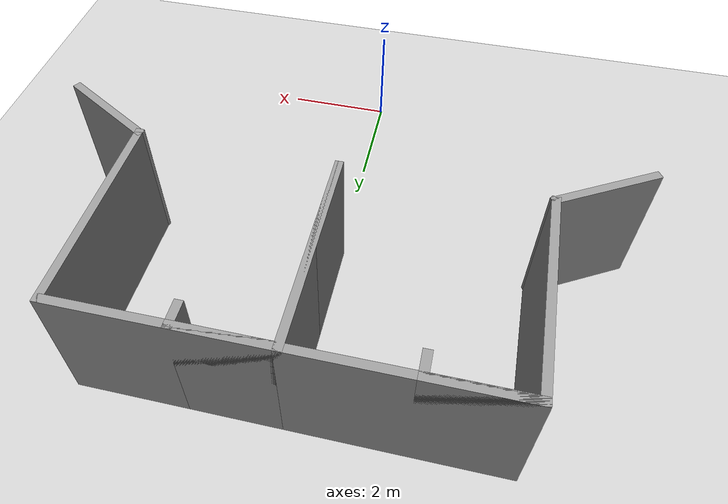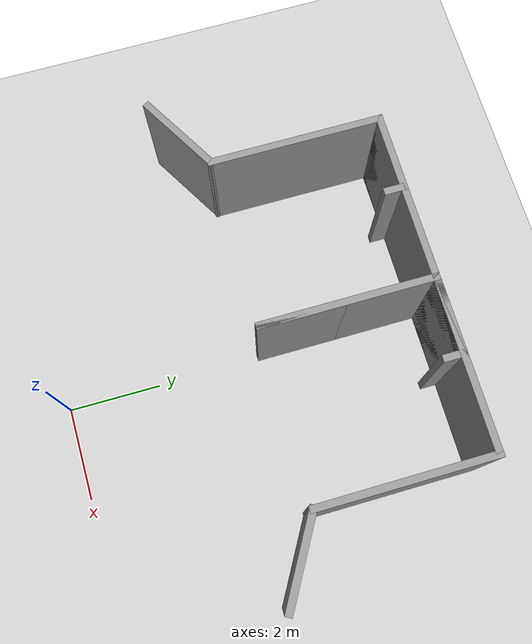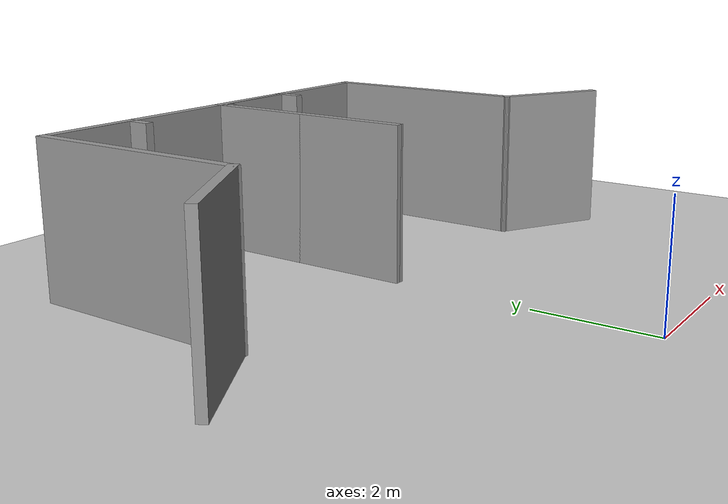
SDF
<sdf version="1.7">
 <world name="default">
  <light name="sun" type="directional">
   <pose>0 0 10 0 -0 0</pose>
   <diffuse>0.8 0.8 0.8 1</diffuse>
   <specular>0.2 0.2 0.2 1</specular>
   <attenuation>
    <range>1000</range>
    <constant>0.9</constant>
    <linear>0.01</linear>
    <quadratic>0.001</quadratic>
   </attenuation>
   <direction>-0.5 0.1 -0.9</direction>
   <spot><inner_angle>0</inner_angle><outer_angle>0</outer_angle><falloff>0</falloff></spot>
  </light>
  <model name="ground_plane">
   <static>1</static>
   <link name="link">
    <collision name="collision">
     <geometry><plane><normal>0 0 1</normal><size>100 100</size></plane></geometry>
     <surface>
      <contact><collide_bitmask>65535</collide_bitmask></contact>
      <friction><ode><mu>100</mu><mu2>50</mu2></ode></friction>
     </surface>
    </collision>
    <visual name="visual">
     <cast_shadows>0</cast_shadows>
     <geometry><plane><normal>0 0 1</normal><size>100 100</size></plane></geometry>
     <material>
      <script><uri>file://media/materials/scripts/gazebo.material</uri><name>Gazebo/Grey</name></script>
     </material>
    </visual>
   </link>
  </model>
  <gravity>0 0 -9.8</gravity>
  <magnetic_field>6e-06 2.3e-05 -4.2e-05</magnetic_field>
  <atmosphere type="adiabatic"/>
  <physics type="ode">
   <max_step_size>0.001</max_step_size>
   <real_time_factor>1</real_time_factor>
   <real_time_update_rate>1000</real_time_update_rate>
  </physics>
  <scene><ambient>0.4 0.4 0.4 1</ambient><background>0.7 0.7 0.7 1</background><shadows>1</shadows></scene>
  <audio><device>default</device></audio>
  <spherical_coordinates>
   <surface_model>EARTH_WGS84</surface_model>
   <latitude_deg>0</latitude_deg>
   <longitude_deg>0</longitude_deg>
   <elevation>0</elevation>
   <heading_deg>0</heading_deg>
  </spherical_coordinates>
  <model name="Pro._world">
   <pose>-0.018921 5.64288 0 0 -0 0</pose>
   <link name="Wall_11">
    <collision name="Wall_11_Collision">
     <geometry><box><size>2 0.15 2.5</size></box></geometry>
     <pose>0 0 1.25 0 -0 0</pose>
    </collision>
    <visual name="Wall_11_Visual">
     <pose>0 0 1.25 0 -0 0</pose>
     <geometry><box><size>2 0.15 2.5</size></box></geometry>
     <material>
      <script><uri>file://media/materials/scripts/gazebo.material</uri><name>Gazebo/Grey</name></script>
      <ambient>1 1 1 1</ambient>
     </material>
     <meta><layer>0</layer></meta>
    </visual>
    <pose>-4.40107 -1.78627 0 0 -0 0.523599</pose>
   </link>
   <link name="Wall_12">
    <collision name="Wall_12_Collision">
     <geometry><box><size>3.75 0.15 2.5</size></box></geometry>
     <pose>0 0 1.25 0 -0 0</pose>
    </collision>
    <visual name="Wall_12_Visual">
     <pose>0 0 1.25 0 -0 0</pose>
     <geometry><box><size>3.75 0.15 2.5</size></box></geometry>
     <material>
      <script><uri>file://media/materials/scripts/gazebo.material</uri><name>Gazebo/Grey</name></script>
      <ambient>1 1 1 1</ambient>
     </material>
     <meta><layer>0</layer></meta>
    </visual>
    <pose>-3.6 0.476226 0 0 -0 1.5708</pose>
   </link>
   <link name="Wall_13">
    <collision name="Wall_13_Collision">
     <geometry><box><size>3.75 0.15 2.5</size></box></geometry>
     <pose>0 0 1.25 0 -0 0</pose>
    </collision>
    <visual name="Wall_13_Visual">
     <pose>0 0 1.25 0 -0 0</pose>
     <geometry><box><size>3.75 0.15 2.5</size></box></geometry>
     <material>
      <script><uri>file://media/materials/scripts/gazebo.material</uri><name>Gazebo/Grey</name></script>
      <ambient>1 1 1 1</ambient>
     </material>
     <meta><layer>0</layer></meta>
    </visual>
    <pose>-1.8 2.27623 0 0 -0 0</pose>
   </link>
   <link name="Wall_14">
    <collision name="Wall_14_Collision">
     <geometry><box><size>3.75 0.15 2.5</size></box></geometry>
     <pose>0 0 1.25 0 -0 0</pose>
    </collision>
    <visual name="Wall_14_Visual">
     <pose>0 0 1.25 0 -0 0</pose>
     <geometry><box><size>3.75 0.15 2.5</size></box></geometry>
     <material>
      <script><uri>file://media/materials/scripts/gazebo.material</uri><name>Gazebo/Grey</name></script>
      <ambient>1 1 1 1</ambient>
     </material>
     <meta><layer>0</layer></meta>
    </visual>
    <pose>0 0.476226 0 0 -0 -1.5708</pose>
   </link>
   <link name="Wall_15">
    <collision name="Wall_15_Collision">
     <geometry><box><size>3.75 0.15 2.5</size></box></geometry>
     <pose>0 0 1.25 0 -0 0</pose>
    </collision>
    <visual name="Wall_15_Visual">
     <pose>0 0 1.25 0 -0 0</pose>
     <geometry><box><size>3.75 0.15 2.5</size></box></geometry>
     <material>
      <script><uri>file://media/materials/scripts/gazebo.material</uri><name>Gazebo/Grey</name></script>
      <ambient>1 1 1 1</ambient>
     </material>
     <meta><layer>0</layer></meta>
    </visual>
    <pose>0 0.476226 0 0 -0 1.5708</pose>
   </link>
   <link name="Wall_16">
    <collision name="Wall_16_Collision">
     <geometry><box><size>3.75 0.15 2.5</size></box></geometry>
     <pose>0 0 1.25 0 -0 0</pose>
    </collision>
    <visual name="Wall_16_Visual">
     <pose>0 0 1.25 0 -0 0</pose>
     <geometry><box><size>3.75 0.15 2.5</size></box></geometry>
     <material>
      <script><uri>file://media/materials/scripts/gazebo.material</uri><name>Gazebo/Grey</name></script>
      <ambient>1 1 1 1</ambient>
     </material>
     <meta><layer>0</layer></meta>
    </visual>
    <pose>1.8 2.27623 0 0 -0 0</pose>
   </link>
   <link name="Wall_17">
    <collision name="Wall_17_Collision">
     <geometry><box><size>3.75 0.15 2.5</size></box></geometry>
     <pose>0 0 1.25 0 -0 0</pose>
    </collision>
    <visual name="Wall_17_Visual">
     <pose>0 0 1.25 0 -0 0</pose>
     <geometry><box><size>3.75 0.15 2.5</size></box></geometry>
     <material>
      <script><uri>file://media/materials/scripts/gazebo.material</uri><name>Gazebo/Grey</name></script>
      <ambient>1 1 1 1</ambient>
     </material>
     <meta><layer>0</layer></meta>
    </visual>
    <pose>3.6 0.476226 0 0 -0 -1.5708</pose>
   </link>
   <link name="Wall_18">
    <collision name="Wall_18_Collision">
     <geometry><box><size>2 0.15 2.5</size></box></geometry>
     <pose>0 0 1.25 0 -0 0</pose>
    </collision>
    <visual name="Wall_18_Visual">
     <pose>0 0 1.25 0 -0 0</pose>
     <geometry><box><size>2 0.15 2.5</size></box></geometry>
     <material>
      <script><uri>file://media/materials/scripts/gazebo.material</uri><name>Gazebo/Grey</name></script>
      <ambient>1 1 1 1</ambient>
     </material>
     <meta><layer>0</layer></meta>
    </visual>
    <pose>4.40107 -1.78627 0 0 -0 -0.523599</pose>
   </link>
   <link name="Wall_21">
    <collision name="Wall_21_Collision">
     <geometry><box><size>1.75 0.15 2.5</size></box></geometry>
     <pose>0 0 1.25 0 -0 0</pose>
    </collision>
    <visual name="Wall_21_Visual">
     <pose>0 0 1.25 0 -0 0</pose>
     <geometry><box><size>1.75 0.15 2.5</size></box></geometry>
     <material>
      <script><uri>file://media/materials/scripts/gazebo.material</uri><name>Gazebo/Grey</name></script>
      <ambient>1 1 1 1</ambient>
     </material>
     <meta><layer>0</layer></meta>
    </visual>
    <pose>-2.8 2.27623 0 0 -0 0</pose>
   </link>
   <link name="Wall_22">
    <collision name="Wall_22_Collision">
     <geometry><box><size>0.5 0.15 2.5</size></box></geometry>
     <pose>0 0 1.25 0 -0 0</pose>
    </collision>
    <visual name="Wall_22_Visual">
     <pose>0 0 1.25 0 -0 0</pose>
     <geometry><box><size>0.5 0.15 2.5</size></box></geometry>
     <material>
      <script><uri>file://media/materials/scripts/gazebo.material</uri><name>Gazebo/Grey</name></script>
      <ambient>1 1 1 1</ambient>
     </material>
     <meta><layer>0</layer></meta>
    </visual>
    <pose>-2 2.10123 0 0 -0 -1.5708</pose>
   </link>
   <link name="Wall_24">
    <collision name="Wall_24_Collision">
     <geometry><box><size>1.75 0.15 2.5</size></box></geometry>
     <pose>0 0 1.25 0 -0 0</pose>
    </collision>
    <visual name="Wall_24_Visual">
     <pose>0 0 1.25 0 -0 0</pose>
     <geometry><box><size>1.75 0.15 2.5</size></box></geometry>
     <material>
      <script><uri>file://media/materials/scripts/gazebo.material</uri><name>Gazebo/Grey</name></script>
      <ambient>1 1 1 1</ambient>
     </material>
     <meta><layer>0</layer></meta>
    </visual>
    <pose>0.8 2.27623 0 0 -0 0</pose>
   </link>
   <link name="Wall_25">
    <collision name="Wall_25_Collision">
     <geometry><box><size>0.5 0.15 2.5</size></box></geometry>
     <pose>0 0 1.25 0 -0 0</pose>
    </collision>
    <visual name="Wall_25_Visual">
     <pose>0 0 1.25 0 -0 0</pose>
     <geometry><box><size>0.5 0.15 2.5</size></box></geometry>
     <material>
      <script><uri>file://media/materials/scripts/gazebo.material</uri><name>Gazebo/Grey</name></script>
      <ambient>1 1 1 1</ambient>
     </material>
     <meta><layer>0</layer></meta>
    </visual>
    <pose>1.6 2.10123 0 0 -0 -1.5708</pose>
   </link>
   <static>1</static>
  </model>
 </world>
</sdf>
